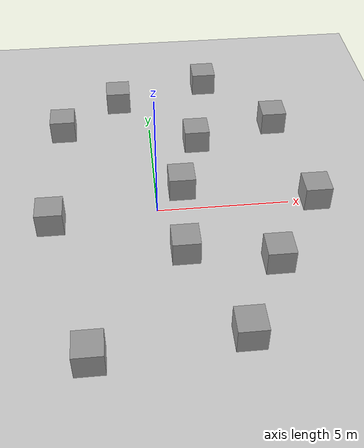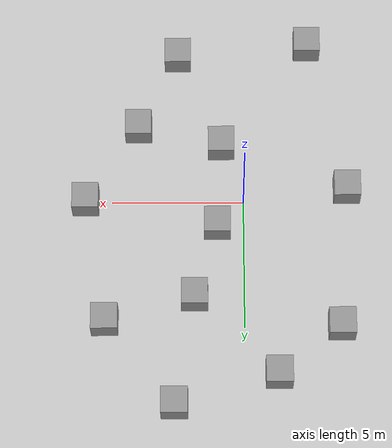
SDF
<sdf version="1.6">
 <world name="default">
  <light name="sun" type="directional">
   <pose>0 0 10 0 -0 0</pose>
   <diffuse>0.8 0.8 0.8 1</diffuse>
   <specular>0.2 0.2 0.2 1</specular>
   <attenuation>
    <range>1000</range>
    <constant>0.9</constant>
    <linear>0.01</linear>
    <quadratic>0.001</quadratic>
   </attenuation>
   <direction>-0.5 0.1 -0.9</direction>
  </light>
  <model name="ground_plane">
   <static>1</static>
   <link name="link">
    <collision name="collision">
     <geometry><plane><normal>0 0 1</normal><size>100 100</size></plane></geometry>
     <surface>
      <contact><collide_bitmask>65535</collide_bitmask></contact>
      <friction><ode><mu>100</mu><mu2>50</mu2></ode></friction>
     </surface>
    </collision>
    <visual name="visual">
     <cast_shadows>0</cast_shadows>
     <geometry><plane><normal>0 0 1</normal><size>100 100</size></plane></geometry>
     <material>
      <script><uri>file://media/materials/scripts/gazebo.material</uri><name>Gazebo/Grey</name></script>
     </material>
    </visual>
   </link>
  </model>
  <gravity>0 0 -9.8</gravity>
  <magnetic_field>6e-06 2.3e-05 -4.2e-05</magnetic_field>
  <atmosphere type="adiabatic"/>
  <physics name="default_physics" default="0" type="ode">
   <max_step_size>0.001</max_step_size>
   <real_time_factor>1</real_time_factor>
   <real_time_update_rate>1000</real_time_update_rate>
  </physics>
  <scene><ambient>0.4 0.4 0.4 1</ambient><background>0.7 0.7 0.7 1</background><shadows>1</shadows></scene>
  <spherical_coordinates>
   <surface_model>EARTH_WGS84</surface_model>
   <latitude_deg>0</latitude_deg>
   <longitude_deg>0</longitude_deg>
   <elevation>0</elevation>
   <heading_deg>0</heading_deg>
  </spherical_coordinates>
  <model name="unit_box">
   <pose>0.831837 -2.27048 0.499995 0 -1e-05 0</pose>
   <link name="link">
    <inertial>
     <mass>1</mass>
     <inertia>
      <ixx>0.166667</ixx>
      <ixy>0</ixy>
      <ixz>0</ixz>
      <iyy>0.166667</iyy>
      <iyz>0</iyz>
      <izz>0.166667</izz>
     </inertia>
    </inertial>
    <collision name="collision"><geometry><box><size>1 1 1</size></box></geometry></collision>
    <visual name="visual">
     <geometry><box><size>1 1 1</size></box></geometry>
     <material>
      <script><name>Gazebo/Grey</name><uri>file://media/materials/scripts/gazebo.material</uri></script>
     </material>
    </visual>
   </link>
  </model>
  <model name="unit_box_clone">
   <pose>1.87255 3.83184 0.499995 1e-05 -0 0</pose>
   <link name="link">
    <inertial>
     <mass>1</mass>
     <inertia>
      <ixx>0.166667</ixx>
      <ixy>0</ixy>
      <ixz>0</ixz>
      <iyy>0.166667</iyy>
      <iyz>0</iyz>
      <izz>0.166667</izz>
     </inertia>
    </inertial>
    <collision name="collision"><geometry><box><size>1 1 1</size></box></geometry></collision>
    <visual name="visual">
     <geometry><box><size>1 1 1</size></box></geometry>
     <material>
      <script><name>Gazebo/Grey</name><uri>file://media/materials/scripts/gazebo.material</uri></script>
     </material>
    </visual>
   </link>
  </model>
  <model name="unit_box_clone_0">
   <pose>-3.61577 5.01447 0.499995 0 1e-05 0</pose>
   <link name="link">
    <inertial>
     <mass>1</mass>
     <inertia>
      <ixx>0.166667</ixx>
      <ixy>0</ixy>
      <ixz>0</ixz>
      <iyy>0.166667</iyy>
      <iyz>0</iyz>
      <izz>0.166667</izz>
     </inertia>
    </inertial>
    <collision name="collision"><geometry><box><size>1 1 1</size></box></geometry></collision>
    <visual name="visual">
     <geometry><box><size>1 1 1</size></box></geometry>
     <material>
      <script><name>Gazebo/Grey</name><uri>file://media/materials/scripts/gazebo.material</uri></script>
     </material>
    </visual>
   </link>
  </model>
  <model name="unit_box_clone_1">
   <pose>-3.94659 -0.425601 0.499995 1e-05 -0 0</pose>
   <link name="link">
    <inertial>
     <mass>1</mass>
     <inertia>
      <ixx>0.166667</ixx>
      <ixy>0</ixy>
      <ixz>0</ixz>
      <iyy>0.166667</iyy>
      <iyz>0</iyz>
      <izz>0.166667</izz>
     </inertia>
    </inertial>
    <collision name="collision"><geometry><box><size>1 1 1</size></box></geometry></collision>
    <visual name="visual">
     <geometry><box><size>1 1 1</size></box></geometry>
     <material>
      <script><name>Gazebo/Grey</name><uri>file://media/materials/scripts/gazebo.material</uri></script>
     </material>
    </visual>
   </link>
  </model>
  <model name="unit_box_clone_2">
   <pose>-1.25021 6.85999 0.499995 0 1e-05 0</pose>
   <link name="link">
    <inertial>
     <mass>1</mass>
     <inertia>
      <ixx>0.166667</ixx>
      <ixy>0</ixy>
      <ixz>0</ixz>
      <iyy>0.166667</iyy>
      <iyz>0</iyz>
      <izz>0.166667</izz>
     </inertia>
    </inertial>
    <collision name="collision"><geometry><box><size>1 1 1</size></box></geometry></collision>
    <visual name="visual">
     <geometry><box><size>1 1 1</size></box></geometry>
     <material>
      <script><name>Gazebo/Grey</name><uri>file://media/materials/scripts/gazebo.material</uri></script>
     </material>
    </visual>
   </link>
  </model>
  <model name="unit_box_clone_3">
   <pose>1 0.99999 0.499995 1e-05 -0 0</pose>
   <link name="link">
    <inertial>
     <mass>1</mass>
     <inertia>
      <ixx>0.166667</ixx>
      <ixy>0</ixy>
      <ixz>0</ixz>
      <iyy>0.166667</iyy>
      <iyz>0</iyz>
      <izz>0.166667</izz>
     </inertia>
    </inertial>
    <collision name="collision"><geometry><box><size>1 1 1</size></box></geometry></collision>
    <visual name="visual">
     <geometry><box><size>1 1 1</size></box></geometry>
     <material>
      <script><name>Gazebo/Grey</name><uri>file://media/materials/scripts/gazebo.material</uri></script>
     </material>
    </visual>
   </link>
  </model>
  <model name="unit_box_clone_4">
   <pose>6 -5e-06 0.499995 0 1e-05 0</pose>
   <link name="link">
    <inertial>
     <mass>1</mass>
     <inertia>
      <ixx>0.166667</ixx>
      <ixy>0</ixy>
      <ixz>0</ixz>
      <iyy>0.166667</iyy>
      <iyz>0</iyz>
      <izz>0.166667</izz>
     </inertia>
    </inertial>
    <collision name="collision"><geometry><box><size>1 1 1</size></box></geometry></collision>
    <visual name="visual">
     <geometry><box><size>1 1 1</size></box></geometry>
     <material>
      <script><name>Gazebo/Grey</name><uri>file://media/materials/scripts/gazebo.material</uri></script>
     </material>
    </visual>
   </link>
  </model>
  <model name="unit_box_clone_5">
   <pose>5.23109 4.77794 0.499995 0 1e-05 0</pose>
   <link name="link">
    <inertial>
     <mass>1</mass>
     <inertia>
      <ixx>0.166667</ixx>
      <ixy>0</ixy>
      <ixz>0</ixz>
      <iyy>0.166667</iyy>
      <iyz>0</iyz>
      <izz>0.166667</izz>
     </inertia>
    </inertial>
    <collision name="collision"><geometry><box><size>1 1 1</size></box></geometry></collision>
    <visual name="visual">
     <geometry><box><size>1 1 1</size></box></geometry>
     <material>
      <script><name>Gazebo/Grey</name><uri>file://media/materials/scripts/gazebo.material</uri></script>
     </material>
    </visual>
   </link>
  </model>
  <model name="unit_box_clone_6">
   <pose>2.62931 7.99594 0.499995 1e-05 -0 0</pose>
   <link name="link">
    <inertial>
     <mass>1</mass>
     <inertia>
      <ixx>0.166667</ixx>
      <ixy>0</ixy>
      <ixz>0</ixz>
      <iyy>0.166667</iyy>
      <iyz>0</iyz>
      <izz>0.166667</izz>
     </inertia>
    </inertial>
    <collision name="collision"><geometry><box><size>1 1 1</size></box></geometry></collision>
    <visual name="visual">
     <geometry><box><size>1 1 1</size></box></geometry>
     <material>
      <script><name>Gazebo/Grey</name><uri>file://media/materials/scripts/gazebo.material</uri></script>
     </material>
    </visual>
   </link>
  </model>
  <model name="unit_box_clone_7">
   <pose>-2.52691 -6.43396 0.499995 0 1e-05 0</pose>
   <link name="link">
    <inertial>
     <mass>1</mass>
     <inertia>
      <ixx>0.166667</ixx>
      <ixy>0</ixy>
      <ixz>0</ixz>
      <iyy>0.166667</iyy>
      <iyz>0</iyz>
      <izz>0.166667</izz>
     </inertia>
    </inertial>
    <collision name="collision"><geometry><box><size>1 1 1</size></box></geometry></collision>
    <visual name="visual">
     <geometry><box><size>1 1 1</size></box></geometry>
     <material>
      <script><name>Gazebo/Grey</name><uri>file://media/materials/scripts/gazebo.material</uri></script>
     </material>
    </visual>
   </link>
  </model>
  <model name="unit_box_clone_8">
   <pose>2.48717 -6 0.499995 -1e-05 0 0</pose>
   <link name="link">
    <inertial>
     <mass>1</mass>
     <inertia>
      <ixx>0.166667</ixx>
      <ixy>0</ixy>
      <ixz>0</ixz>
      <iyy>0.166667</iyy>
      <iyz>0</iyz>
      <izz>0.166667</izz>
     </inertia>
    </inertial>
    <collision name="collision"><geometry><box><size>1 1 1</size></box></geometry></collision>
    <visual name="visual">
     <geometry><box><size>1 1 1</size></box></geometry>
     <material>
      <script><name>Gazebo/Grey</name><uri>file://media/materials/scripts/gazebo.material</uri></script>
     </material>
    </visual>
   </link>
  </model>
  <model name="unit_box_clone_9">
   <pose>4 -3 0.499995 0 -1e-05 0</pose>
   <link name="link">
    <inertial>
     <mass>1</mass>
     <inertia>
      <ixx>0.166667</ixx>
      <ixy>0</ixy>
      <ixz>0</ixz>
      <iyy>0.166667</iyy>
      <iyz>0</iyz>
      <izz>0.166667</izz>
     </inertia>
    </inertial>
    <collision name="collision"><geometry><box><size>1 1 1</size></box></geometry></collision>
    <visual name="visual">
     <geometry><box><size>1 1 1</size></box></geometry>
     <material>
      <script><name>Gazebo/Grey</name><uri>file://media/materials/scripts/gazebo.material</uri></script>
     </material>
    </visual>
   </link>
  </model>
 </world>
</sdf>
